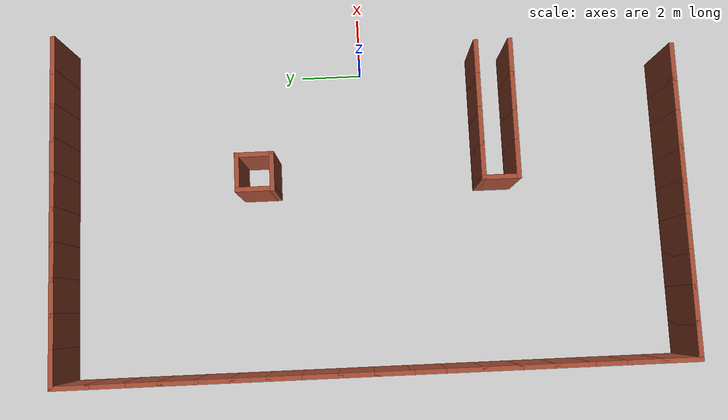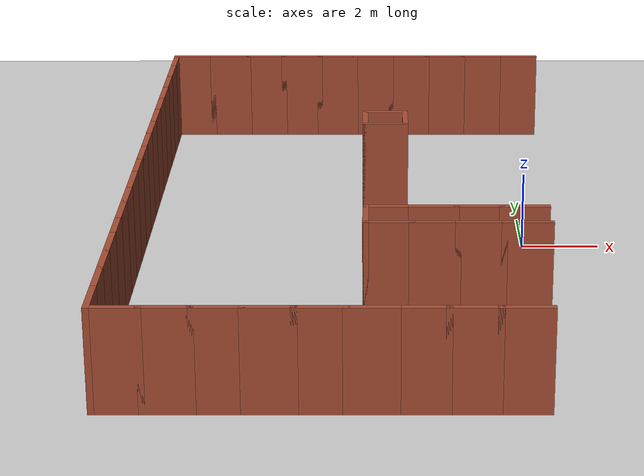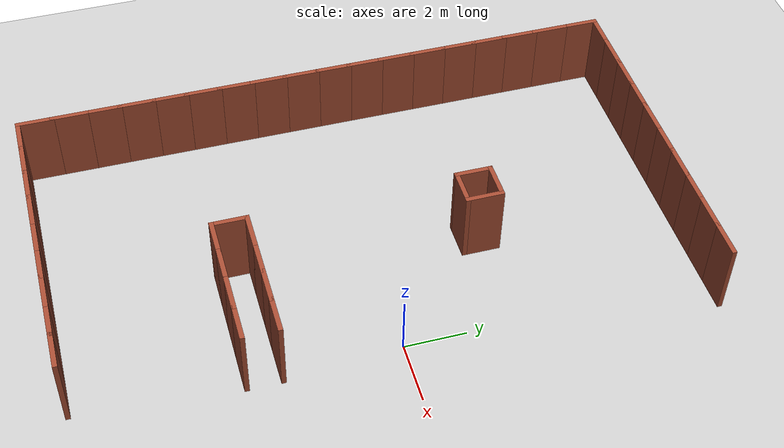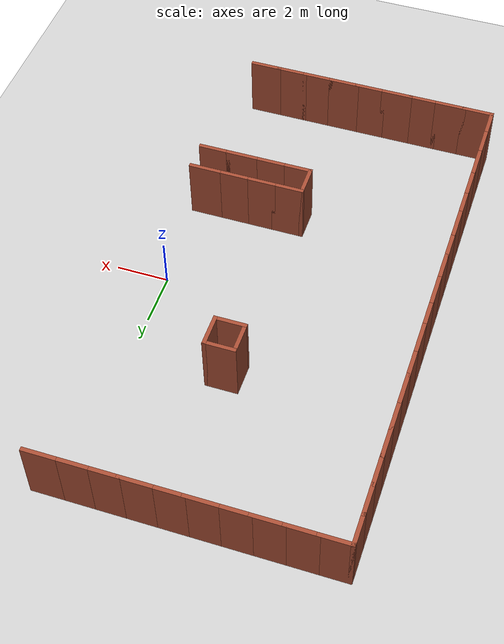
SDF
<sdf version="1.7">
 <world name="default">
  <model name="ground_plane">
   <static>1</static>
   <link name="link">
    <collision name="collision">
     <geometry><plane><normal>0 0 1</normal><size>100 100</size></plane></geometry>
     <surface>
      <contact><collide_bitmask>65535</collide_bitmask></contact>
      <friction><ode><mu>100</mu><mu2>50</mu2></ode></friction>
     </surface>
    </collision>
    <visual name="visual">
     <cast_shadows>0</cast_shadows>
     <geometry><plane><normal>0 0 1</normal><size>100 100</size></plane></geometry>
     <material>
      <script><uri>file://media/materials/scripts/gazebo.material</uri><name>Gazebo/Grey</name></script>
     </material>
    </visual>
   </link>
  </model>
  <model name="mapateste">
   <pose>0.45 -0.1 0 0 -0 0</pose>
   <link name="Wall_110">
    <collision name="Wall_110_Collision">
     <geometry><box><size>1.25 0.15 2.5</size></box></geometry>
     <pose>0 0 1.25 0 -0 0</pose>
    </collision>
    <visual name="Wall_110_Visual">
     <pose>0 0 1.25 0 -0 0</pose>
     <geometry><box><size>1.25 0.15 2.5</size></box></geometry>
     <material>
      <script><uri>file://media/materials/scripts/gazebo.material</uri><name>Gazebo/Bricks</name></script>
      <ambient>1 1 1 1</ambient>
     </material>
     <meta><layer>0</layer></meta>
    </visual>
    <pose>-0 9.9 0 0 -0 3.14159</pose>
   </link>
   <link name="Wall_111">
    <collision name="Wall_111_Collision">
     <geometry><box><size>1.25 0.15 2.5</size></box></geometry>
     <pose>0 0 1.25 0 -0 0</pose>
    </collision>
    <visual name="Wall_111_Visual">
     <pose>0 0 1.25 0 -0 0</pose>
     <geometry><box><size>1.25 0.15 2.5</size></box></geometry>
     <material>
      <script><uri>file://media/materials/scripts/gazebo.material</uri><name>Gazebo/Bricks</name></script>
      <ambient>1 1 1 1</ambient>
     </material>
     <meta><layer>0</layer></meta>
    </visual>
    <pose>-1.1 9.9 0 0 -0 3.14159</pose>
   </link>
   <link name="Wall_112">
    <collision name="Wall_112_Collision">
     <geometry><box><size>1.25 0.15 2.5</size></box></geometry>
     <pose>0 0 1.25 0 -0 0</pose>
    </collision>
    <visual name="Wall_112_Visual">
     <pose>0 0 1.25 0 -0 0</pose>
     <geometry><box><size>1.25 0.15 2.5</size></box></geometry>
     <material>
      <script><uri>file://media/materials/scripts/gazebo.material</uri><name>Gazebo/Bricks</name></script>
      <ambient>1 1 1 1</ambient>
     </material>
     <meta><layer>0</layer></meta>
    </visual>
    <pose>-2.2 9.9 0 0 -0 3.14159</pose>
   </link>
   <link name="Wall_113">
    <collision name="Wall_113_Collision">
     <geometry><box><size>1.25 0.15 2.5</size></box></geometry>
     <pose>0 0 1.25 0 -0 0</pose>
    </collision>
    <visual name="Wall_113_Visual">
     <pose>0 0 1.25 0 -0 0</pose>
     <geometry><box><size>1.25 0.15 2.5</size></box></geometry>
     <material>
      <script><uri>file://media/materials/scripts/gazebo.material</uri><name>Gazebo/Bricks</name></script>
      <ambient>1 1 1 1</ambient>
     </material>
     <meta><layer>0</layer></meta>
    </visual>
    <pose>-3.3 9.9 0 0 -0 3.14159</pose>
   </link>
   <link name="Wall_114">
    <collision name="Wall_114_Collision">
     <geometry><box><size>1.25 0.15 2.5</size></box></geometry>
     <pose>0 0 1.25 0 -0 0</pose>
    </collision>
    <visual name="Wall_114_Visual">
     <pose>0 0 1.25 0 -0 0</pose>
     <geometry><box><size>1.25 0.15 2.5</size></box></geometry>
     <material>
      <script><uri>file://media/materials/scripts/gazebo.material</uri><name>Gazebo/Bricks</name></script>
      <ambient>1 1 1 1</ambient>
     </material>
     <meta><layer>0</layer></meta>
    </visual>
    <pose>-4.4 9.9 0 0 -0 3.14159</pose>
   </link>
   <link name="Wall_115">
    <collision name="Wall_115_Collision">
     <geometry><box><size>1.25 0.15 2.5</size></box></geometry>
     <pose>0 0 1.25 0 -0 0</pose>
    </collision>
    <visual name="Wall_115_Visual">
     <pose>0 0 1.25 0 -0 0</pose>
     <geometry><box><size>1.25 0.15 2.5</size></box></geometry>
     <material>
      <script><uri>file://media/materials/scripts/gazebo.material</uri><name>Gazebo/Bricks</name></script>
      <ambient>1 1 1 1</ambient>
     </material>
     <meta><layer>0</layer></meta>
    </visual>
    <pose>-5.5 9.9 0 0 -0 3.14159</pose>
   </link>
   <link name="Wall_116">
    <collision name="Wall_116_Collision">
     <geometry><box><size>1.25 0.15 2.5</size></box></geometry>
     <pose>0 0 1.25 0 -0 0</pose>
    </collision>
    <visual name="Wall_116_Visual">
     <pose>0 0 1.25 0 -0 0</pose>
     <geometry><box><size>1.25 0.15 2.5</size></box></geometry>
     <material>
      <script><uri>file://media/materials/scripts/gazebo.material</uri><name>Gazebo/Bricks</name></script>
      <ambient>1 1 1 1</ambient>
     </material>
     <meta><layer>0</layer></meta>
    </visual>
    <pose>-6.6 9.9 0 0 -0 3.14159</pose>
   </link>
   <link name="Wall_117">
    <collision name="Wall_117_Collision">
     <geometry><box><size>1.25 0.15 2.5</size></box></geometry>
     <pose>0 0 1.25 0 -0 0</pose>
    </collision>
    <visual name="Wall_117_Visual">
     <pose>0 0 1.25 0 -0 0</pose>
     <geometry><box><size>1.25 0.15 2.5</size></box></geometry>
     <material>
      <script><uri>file://media/materials/scripts/gazebo.material</uri><name>Gazebo/Bricks</name></script>
      <ambient>1 1 1 1</ambient>
     </material>
     <meta><layer>0</layer></meta>
    </visual>
    <pose>-7.7 9.9 0 0 -0 3.14159</pose>
   </link>
   <link name="Wall_118">
    <collision name="Wall_118_Collision">
     <geometry><box><size>1.25 0.15 2.5</size></box></geometry>
     <pose>0 0 1.25 0 -0 0</pose>
    </collision>
    <visual name="Wall_118_Visual">
     <pose>0 0 1.25 0 -0 0</pose>
     <geometry><box><size>1.25 0.15 2.5</size></box></geometry>
     <material>
      <script><uri>file://media/materials/scripts/gazebo.material</uri><name>Gazebo/Bricks</name></script>
      <ambient>1 1 1 1</ambient>
     </material>
     <meta><layer>0</layer></meta>
    </visual>
    <pose>-8.8 9.9 0 0 -0 3.14159</pose>
   </link>
   <link name="Wall_119">
    <collision name="Wall_119_Collision">
     <geometry><box><size>1.25 0.15 2.5</size></box></geometry>
     <pose>0 0 1.25 0 -0 0</pose>
    </collision>
    <visual name="Wall_119_Visual">
     <pose>0 0 1.25 0 -0 0</pose>
     <geometry><box><size>1.25 0.15 2.5</size></box></geometry>
     <material>
      <script><uri>file://media/materials/scripts/gazebo.material</uri><name>Gazebo/Bricks</name></script>
      <ambient>1 1 1 1</ambient>
     </material>
     <meta><layer>0</layer></meta>
    </visual>
    <pose>-9.9 9.9 0 0 -0 3.14159</pose>
   </link>
   <link name="Wall_120">
    <collision name="Wall_120_Collision">
     <geometry><box><size>1.25 0.15 2.5</size></box></geometry>
     <pose>0 0 1.25 0 -0 0</pose>
    </collision>
    <visual name="Wall_120_Visual">
     <pose>0 0 1.25 0 -0 0</pose>
     <geometry><box><size>1.25 0.15 2.5</size></box></geometry>
     <material>
      <script><uri>file://media/materials/scripts/gazebo.material</uri><name>Gazebo/Bricks</name></script>
      <ambient>1 1 1 1</ambient>
     </material>
     <meta><layer>0</layer></meta>
    </visual>
    <pose>-10.45 9.35 0 0 -0 -1.5708</pose>
   </link>
   <link name="Wall_126">
    <collision name="Wall_126_Collision">
     <geometry><box><size>1.25 0.15 2.5</size></box></geometry>
     <pose>0 0 1.25 0 -0 0</pose>
    </collision>
    <visual name="Wall_126_Visual">
     <pose>0 0 1.25 0 -0 0</pose>
     <geometry><box><size>1.25 0.15 2.5</size></box></geometry>
     <material>
      <script><uri>file://media/materials/scripts/gazebo.material</uri><name>Gazebo/Bricks</name></script>
      <ambient>1 1 1 1</ambient>
     </material>
     <meta><layer>0</layer></meta>
    </visual>
    <pose>-10.45 3.85 0 0 -0 -1.5708</pose>
   </link>
   <link name="Wall_127">
    <collision name="Wall_127_Collision">
     <geometry><box><size>1.25 0.15 2.5</size></box></geometry>
     <pose>0 0 1.25 0 -0 0</pose>
    </collision>
    <visual name="Wall_127_Visual">
     <pose>0 0 1.25 0 -0 0</pose>
     <geometry><box><size>1.25 0.15 2.5</size></box></geometry>
     <material>
      <script><uri>file://media/materials/scripts/gazebo.material</uri><name>Gazebo/Bricks</name></script>
      <ambient>1 1 1 1</ambient>
     </material>
     <meta><layer>0</layer></meta>
    </visual>
    <pose>-10.45 2.75 0 0 -0 -1.5708</pose>
   </link>
   <link name="Wall_128">
    <collision name="Wall_128_Collision">
     <geometry><box><size>1.25 0.15 2.5</size></box></geometry>
     <pose>0 0 1.25 0 -0 0</pose>
    </collision>
    <visual name="Wall_128_Visual">
     <pose>0 0 1.25 0 -0 0</pose>
     <geometry><box><size>1.25 0.15 2.5</size></box></geometry>
     <material>
      <script><uri>file://media/materials/scripts/gazebo.material</uri><name>Gazebo/Bricks</name></script>
      <ambient>1 1 1 1</ambient>
     </material>
     <meta><layer>0</layer></meta>
    </visual>
    <pose>-10.45 1.65 0 0 -0 -1.5708</pose>
   </link>
   <link name="Wall_129">
    <collision name="Wall_129_Collision">
     <geometry><box><size>1.25 0.15 2.5</size></box></geometry>
     <pose>0 0 1.25 0 -0 0</pose>
    </collision>
    <visual name="Wall_129_Visual">
     <pose>0 0 1.25 0 -0 0</pose>
     <geometry><box><size>1.25 0.15 2.5</size></box></geometry>
     <material>
      <script><uri>file://media/materials/scripts/gazebo.material</uri><name>Gazebo/Bricks</name></script>
      <ambient>1 1 1 1</ambient>
     </material>
     <meta><layer>0</layer></meta>
    </visual>
    <pose>-10.45 0.55 0 0 -0 -1.5708</pose>
   </link>
   <link name="Wall_130">
    <collision name="Wall_130_Collision">
     <geometry><box><size>1.25 0.15 2.5</size></box></geometry>
     <pose>0 0 1.25 0 -0 0</pose>
    </collision>
    <visual name="Wall_130_Visual">
     <pose>0 0 1.25 0 -0 0</pose>
     <geometry><box><size>1.25 0.15 2.5</size></box></geometry>
     <material>
      <script><uri>file://media/materials/scripts/gazebo.material</uri><name>Gazebo/Bricks</name></script>
      <ambient>1 1 1 1</ambient>
     </material>
     <meta><layer>0</layer></meta>
    </visual>
    <pose>-10.45 -0.55 0 0 -0 -1.5708</pose>
   </link>
   <link name="Wall_131">
    <collision name="Wall_131_Collision">
     <geometry><box><size>1.25 0.15 2.5</size></box></geometry>
     <pose>0 0 1.25 0 -0 0</pose>
    </collision>
    <visual name="Wall_131_Visual">
     <pose>0 0 1.25 0 -0 0</pose>
     <geometry><box><size>1.25 0.15 2.5</size></box></geometry>
     <material>
      <script><uri>file://media/materials/scripts/gazebo.material</uri><name>Gazebo/Bricks</name></script>
      <ambient>1 1 1 1</ambient>
     </material>
     <meta><layer>0</layer></meta>
    </visual>
    <pose>-10.45 -1.65 0 0 -0 -1.5708</pose>
   </link>
   <link name="Wall_132">
    <collision name="Wall_132_Collision">
     <geometry><box><size>1.25 0.15 2.5</size></box></geometry>
     <pose>0 0 1.25 0 -0 0</pose>
    </collision>
    <visual name="Wall_132_Visual">
     <pose>0 0 1.25 0 -0 0</pose>
     <geometry><box><size>1.25 0.15 2.5</size></box></geometry>
     <material>
      <script><uri>file://media/materials/scripts/gazebo.material</uri><name>Gazebo/Bricks</name></script>
      <ambient>1 1 1 1</ambient>
     </material>
     <meta><layer>0</layer></meta>
    </visual>
    <pose>-10.45 -2.75 0 0 -0 -1.5708</pose>
   </link>
   <link name="Wall_133">
    <collision name="Wall_133_Collision">
     <geometry><box><size>1.25 0.15 2.5</size></box></geometry>
     <pose>0 0 1.25 0 -0 0</pose>
    </collision>
    <visual name="Wall_133_Visual">
     <pose>0 0 1.25 0 -0 0</pose>
     <geometry><box><size>1.25 0.15 2.5</size></box></geometry>
     <material>
      <script><uri>file://media/materials/scripts/gazebo.material</uri><name>Gazebo/Bricks</name></script>
      <ambient>1 1 1 1</ambient>
     </material>
     <meta><layer>0</layer></meta>
    </visual>
    <pose>-10.45 -3.85 0 0 -0 -1.5708</pose>
   </link>
   <link name="Wall_134">
    <collision name="Wall_134_Collision">
     <geometry><box><size>1.25 0.15 2.5</size></box></geometry>
     <pose>0 0 1.25 0 -0 0</pose>
    </collision>
    <visual name="Wall_134_Visual">
     <pose>0 0 1.25 0 -0 0</pose>
     <geometry><box><size>1.25 0.15 2.5</size></box></geometry>
     <material>
      <script><uri>file://media/materials/scripts/gazebo.material</uri><name>Gazebo/Bricks</name></script>
      <ambient>1 1 1 1</ambient>
     </material>
     <meta><layer>0</layer></meta>
    </visual>
    <pose>-10.45 -4.95 0 0 -0 -1.5708</pose>
   </link>
   <link name="Wall_135">
    <collision name="Wall_135_Collision">
     <geometry><box><size>1.25 0.15 2.5</size></box></geometry>
     <pose>0 0 1.25 0 -0 0</pose>
    </collision>
    <visual name="Wall_135_Visual">
     <pose>0 0 1.25 0 -0 0</pose>
     <geometry><box><size>1.25 0.15 2.5</size></box></geometry>
     <material>
      <script><uri>file://media/materials/scripts/gazebo.material</uri><name>Gazebo/Bricks</name></script>
      <ambient>1 1 1 1</ambient>
     </material>
     <meta><layer>0</layer></meta>
    </visual>
    <pose>-10.45 -6.05 0 0 -0 -1.5708</pose>
   </link>
   <link name="Wall_136">
    <collision name="Wall_136_Collision">
     <geometry><box><size>1.25 0.15 2.5</size></box></geometry>
     <pose>0 0 1.25 0 -0 0</pose>
    </collision>
    <visual name="Wall_136_Visual">
     <pose>0 0 1.25 0 -0 0</pose>
     <geometry><box><size>1.25 0.15 2.5</size></box></geometry>
     <material>
      <script><uri>file://media/materials/scripts/gazebo.material</uri><name>Gazebo/Bricks</name></script>
      <ambient>1 1 1 1</ambient>
     </material>
     <meta><layer>0</layer></meta>
    </visual>
    <pose>-10.45 -7.15 0 0 -0 -1.5708</pose>
   </link>
   <link name="Wall_137">
    <collision name="Wall_137_Collision">
     <geometry><box><size>1.25 0.15 2.5</size></box></geometry>
     <pose>0 0 1.25 0 -0 0</pose>
    </collision>
    <visual name="Wall_137_Visual">
     <pose>0 0 1.25 0 -0 0</pose>
     <geometry><box><size>1.25 0.15 2.5</size></box></geometry>
     <material>
      <script><uri>file://media/materials/scripts/gazebo.material</uri><name>Gazebo/Bricks</name></script>
      <ambient>1 1 1 1</ambient>
     </material>
     <meta><layer>0</layer></meta>
    </visual>
    <pose>-10.45 -8.25 0 0 -0 -1.5708</pose>
   </link>
   <link name="Wall_138">
    <collision name="Wall_138_Collision">
     <geometry><box><size>1.25 0.15 2.5</size></box></geometry>
     <pose>0 0 1.25 0 -0 0</pose>
    </collision>
    <visual name="Wall_138_Visual">
     <pose>0 0 1.25 0 -0 0</pose>
     <geometry><box><size>1.25 0.15 2.5</size></box></geometry>
     <material>
      <script><uri>file://media/materials/scripts/gazebo.material</uri><name>Gazebo/Bricks</name></script>
      <ambient>1 1 1 1</ambient>
     </material>
     <meta><layer>0</layer></meta>
    </visual>
    <pose>-10.45 -9.35 0 0 -0 -1.5708</pose>
   </link>
   <link name="Wall_142">
    <collision name="Wall_142_Collision">
     <geometry><box><size>1.25 0.15 2.5</size></box></geometry>
     <pose>0 0 1.25 0 -0 0</pose>
    </collision>
    <visual name="Wall_142_Visual">
     <pose>0 0 1.25 0 -0 0</pose>
     <geometry><box><size>1.25 0.15 2.5</size></box></geometry>
     <material>
      <script><uri>file://media/materials/scripts/gazebo.material</uri><name>Gazebo/Bricks</name></script>
      <ambient>1 1 1 1</ambient>
     </material>
     <meta><layer>0</layer></meta>
    </visual>
    <pose>-4.60633 3.55566 0 0 -0 1.5708</pose>
   </link>
   <link name="Wall_144">
    <collision name="Wall_144_Collision">
     <geometry><box><size>1.25 0.15 2.5</size></box></geometry>
     <pose>0 0 1.25 0 -0 0</pose>
    </collision>
    <visual name="Wall_144_Visual">
     <pose>0 0 1.25 0 -0 0</pose>
     <geometry><box><size>1.25 0.15 2.5</size></box></geometry>
     <material>
      <script><uri>file://media/materials/scripts/gazebo.material</uri><name>Gazebo/Bricks</name></script>
      <ambient>1 1 1 1</ambient>
     </material>
     <meta><layer>0</layer></meta>
    </visual>
    <pose>-10.45 8.25 0 0 -0 -1.5708</pose>
   </link>
   <link name="Wall_145">
    <collision name="Wall_145_Collision">
     <geometry><box><size>1.25 0.15 2.5</size></box></geometry>
     <pose>0 0 1.25 0 -0 0</pose>
    </collision>
    <visual name="Wall_145_Visual">
     <pose>0 0 1.25 0 -0 0</pose>
     <geometry><box><size>1.25 0.15 2.5</size></box></geometry>
     <material>
      <script><uri>file://media/materials/scripts/gazebo.material</uri><name>Gazebo/Bricks</name></script>
      <ambient>1 1 1 1</ambient>
     </material>
     <meta><layer>0</layer></meta>
    </visual>
    <pose>-10.45 7.15 0 0 -0 -1.5708</pose>
   </link>
   <link name="Wall_146">
    <collision name="Wall_146_Collision">
     <geometry><box><size>1.25 0.15 2.5</size></box></geometry>
     <pose>0 0 1.25 0 -0 0</pose>
    </collision>
    <visual name="Wall_146_Visual">
     <pose>0 0 1.25 0 -0 0</pose>
     <geometry><box><size>1.25 0.15 2.5</size></box></geometry>
     <material>
      <script><uri>file://media/materials/scripts/gazebo.material</uri><name>Gazebo/Bricks</name></script>
      <ambient>1 1 1 1</ambient>
     </material>
     <meta><layer>0</layer></meta>
    </visual>
    <pose>-10.45 6.05 0 0 -0 -1.5708</pose>
   </link>
   <link name="Wall_147">
    <collision name="Wall_147_Collision">
     <geometry><box><size>1.25 0.15 2.5</size></box></geometry>
     <pose>0 0 1.25 0 -0 0</pose>
    </collision>
    <visual name="Wall_147_Visual">
     <pose>0 0 1.25 0 -0 0</pose>
     <geometry><box><size>1.25 0.15 2.5</size></box></geometry>
     <material>
      <script><uri>file://media/materials/scripts/gazebo.material</uri><name>Gazebo/Bricks</name></script>
      <ambient>1 1 1 1</ambient>
     </material>
     <meta><layer>0</layer></meta>
    </visual>
    <pose>-10.45 4.95 0 0 -0 -1.5708</pose>
   </link>
   <link name="Wall_155">
    <collision name="Wall_155_Collision">
     <geometry><box><size>1.25 0.15 2.5</size></box></geometry>
     <pose>0 0 1.25 0 -0 0</pose>
    </collision>
    <visual name="Wall_155_Visual">
     <pose>0 0 1.25 0 -0 0</pose>
     <geometry><box><size>1.25 0.15 2.5</size></box></geometry>
     <material>
      <script><uri>file://media/materials/scripts/gazebo.material</uri><name>Gazebo/Bricks</name></script>
      <ambient>1 1 1 1</ambient>
     </material>
     <meta><layer>0</layer></meta>
    </visual>
    <pose>-4.05633 4.10566 0 0 -0 0</pose>
   </link>
   <link name="Wall_156">
    <collision name="Wall_156_Collision">
     <geometry><box><size>1.25 0.15 2.5</size></box></geometry>
     <pose>0 0 1.25 0 -0 0</pose>
    </collision>
    <visual name="Wall_156_Visual">
     <pose>0 0 1.25 0 -0 0</pose>
     <geometry><box><size>1.25 0.15 2.5</size></box></geometry>
     <material>
      <script><uri>file://media/materials/scripts/gazebo.material</uri><name>Gazebo/Bricks</name></script>
      <ambient>1 1 1 1</ambient>
     </material>
     <meta><layer>0</layer></meta>
    </visual>
    <pose>-3.50633 3.55566 0 0 -0 -1.5708</pose>
   </link>
   <link name="Wall_157">
    <collision name="Wall_157_Collision">
     <geometry><box><size>1.25 0.15 2.5</size></box></geometry>
     <pose>0 0 1.25 0 -0 0</pose>
    </collision>
    <visual name="Wall_157_Visual">
     <pose>0 0 1.25 0 -0 0</pose>
     <geometry><box><size>1.25 0.15 2.5</size></box></geometry>
     <material>
      <script><uri>file://media/materials/scripts/gazebo.material</uri><name>Gazebo/Bricks</name></script>
      <ambient>1 1 1 1</ambient>
     </material>
     <meta><layer>0</layer></meta>
    </visual>
    <pose>-4.05633 3.00566 0 0 -0 3.14159</pose>
   </link>
   <link name="Wall_169">
    <collision name="Wall_169_Collision">
     <geometry><box><size>1.25 0.15 2.5</size></box></geometry>
     <pose>0 0 1.25 0 -0 0</pose>
    </collision>
    <visual name="Wall_169_Visual">
     <pose>0 0 1.25 0 -0 0</pose>
     <geometry><box><size>1.25 0.15 2.5</size></box></geometry>
     <material>
      <script><uri>file://media/materials/scripts/gazebo.material</uri><name>Gazebo/Bricks</name></script>
      <ambient>1 1 1 1</ambient>
     </material>
     <meta><layer>0</layer></meta>
    </visual>
    <pose>-4.55922 -4.19159 0 0 -0 -1.5708</pose>
   </link>
   <link name="Wall_174">
    <collision name="Wall_174_Collision">
     <geometry><box><size>1.25 0.15 2.5</size></box></geometry>
     <pose>0 0 1.25 0 -0 0</pose>
    </collision>
    <visual name="Wall_174_Visual">
     <pose>0 0 1.25 0 -0 0</pose>
     <geometry><box><size>1.25 0.15 2.5</size></box></geometry>
     <material>
      <script><uri>file://media/materials/scripts/gazebo.material</uri><name>Gazebo/Bricks</name></script>
      <ambient>1 1 1 1</ambient>
     </material>
     <meta><layer>0</layer></meta>
    </visual>
    <pose>-4.00922 -4.74159 0 0 -0 0</pose>
   </link>
   <link name="Wall_175">
    <collision name="Wall_175_Collision">
     <geometry><box><size>1.25 0.15 2.5</size></box></geometry>
     <pose>0 0 1.25 0 -0 0</pose>
    </collision>
    <visual name="Wall_175_Visual">
     <pose>0 0 1.25 0 -0 0</pose>
     <geometry><box><size>1.25 0.15 2.5</size></box></geometry>
     <material>
      <script><uri>file://media/materials/scripts/gazebo.material</uri><name>Gazebo/Bricks</name></script>
      <ambient>1 1 1 1</ambient>
     </material>
     <meta><layer>0</layer></meta>
    </visual>
    <pose>-2.90922 -4.74159 0 0 -0 0</pose>
   </link>
   <link name="Wall_176">
    <collision name="Wall_176_Collision">
     <geometry><box><size>1.25 0.15 2.5</size></box></geometry>
     <pose>0 0 1.25 0 -0 0</pose>
    </collision>
    <visual name="Wall_176_Visual">
     <pose>0 0 1.25 0 -0 0</pose>
     <geometry><box><size>1.25 0.15 2.5</size></box></geometry>
     <material>
      <script><uri>file://media/materials/scripts/gazebo.material</uri><name>Gazebo/Bricks</name></script>
      <ambient>1 1 1 1</ambient>
     </material>
     <meta><layer>0</layer></meta>
    </visual>
    <pose>-1.80922 -4.74159 0 0 -0 0</pose>
   </link>
   <link name="Wall_177">
    <collision name="Wall_177_Collision">
     <geometry><box><size>1.25 0.15 2.5</size></box></geometry>
     <pose>0 0 1.25 0 -0 0</pose>
    </collision>
    <visual name="Wall_177_Visual">
     <pose>0 0 1.25 0 -0 0</pose>
     <geometry><box><size>1.25 0.15 2.5</size></box></geometry>
     <material>
      <script><uri>file://media/materials/scripts/gazebo.material</uri><name>Gazebo/Bricks</name></script>
      <ambient>1 1 1 1</ambient>
     </material>
     <meta><layer>0</layer></meta>
    </visual>
    <pose>-0.709218 -4.74159 0 0 -0 0</pose>
   </link>
   <link name="Wall_188">
    <collision name="Wall_188_Collision">
     <geometry><box><size>1.25 0.15 2.5</size></box></geometry>
     <pose>0 0 1.25 0 -0 0</pose>
    </collision>
    <visual name="Wall_188_Visual">
     <pose>0 0 1.25 0 -0 0</pose>
     <geometry><box><size>1.25 0.15 2.5</size></box></geometry>
     <material>
      <script><uri>file://media/materials/scripts/gazebo.material</uri><name>Gazebo/Bricks</name></script>
      <ambient>1 1 1 1</ambient>
     </material>
     <meta><layer>0</layer></meta>
    </visual>
    <pose>-4.00922 -3.64159 0 0 -0 0</pose>
   </link>
   <link name="Wall_189">
    <collision name="Wall_189_Collision">
     <geometry><box><size>1.25 0.15 2.5</size></box></geometry>
     <pose>0 0 1.25 0 -0 0</pose>
    </collision>
    <visual name="Wall_189_Visual">
     <pose>0 0 1.25 0 -0 0</pose>
     <geometry><box><size>1.25 0.15 2.5</size></box></geometry>
     <material>
      <script><uri>file://media/materials/scripts/gazebo.material</uri><name>Gazebo/Bricks</name></script>
      <ambient>1 1 1 1</ambient>
     </material>
     <meta><layer>0</layer></meta>
    </visual>
    <pose>-2.90922 -3.64159 0 0 -0 0</pose>
   </link>
   <link name="Wall_190">
    <collision name="Wall_190_Collision">
     <geometry><box><size>1.25 0.15 2.5</size></box></geometry>
     <pose>0 0 1.25 0 -0 0</pose>
    </collision>
    <visual name="Wall_190_Visual">
     <pose>0 0 1.25 0 -0 0</pose>
     <geometry><box><size>1.25 0.15 2.5</size></box></geometry>
     <material>
      <script><uri>file://media/materials/scripts/gazebo.material</uri><name>Gazebo/Bricks</name></script>
      <ambient>1 1 1 1</ambient>
     </material>
     <meta><layer>0</layer></meta>
    </visual>
    <pose>-1.80922 -3.64159 0 0 -0 0</pose>
   </link>
   <link name="Wall_191">
    <collision name="Wall_191_Collision">
     <geometry><box><size>1.25 0.15 2.5</size></box></geometry>
     <pose>0 0 1.25 0 -0 0</pose>
    </collision>
    <visual name="Wall_191_Visual">
     <pose>0 0 1.25 0 -0 0</pose>
     <geometry><box><size>1.25 0.15 2.5</size></box></geometry>
     <material>
      <script><uri>file://media/materials/scripts/gazebo.material</uri><name>Gazebo/Bricks</name></script>
      <ambient>1 1 1 1</ambient>
     </material>
     <meta><layer>0</layer></meta>
    </visual>
    <pose>-0.709218 -3.64159 0 0 -0 0</pose>
   </link>
   <link name="Wall_197">
    <collision name="Wall_197_Collision">
     <geometry><box><size>1.25 0.15 2.5</size></box></geometry>
     <pose>0 0 1.25 0 -0 0</pose>
    </collision>
    <visual name="Wall_197_Visual">
     <pose>0 0 1.25 0 -0 0</pose>
     <geometry><box><size>1.25 0.15 2.5</size></box></geometry>
     <material>
      <script><uri>file://media/materials/scripts/gazebo.material</uri><name>Gazebo/Bricks</name></script>
      <ambient>1 1 1 1</ambient>
     </material>
     <meta><layer>0</layer></meta>
    </visual>
    <pose>-9.9 -9.9 0 0 -0 3.14159</pose>
   </link>
   <link name="Wall_64">
    <collision name="Wall_64_Collision">
     <geometry><box><size>1.25 0.15 2.5</size></box></geometry>
     <pose>0 0 1.25 0 -0 0</pose>
    </collision>
    <visual name="Wall_64_Visual">
     <pose>0 0 1.25 0 -0 0</pose>
     <geometry><box><size>1.25 0.15 2.5</size></box></geometry>
     <material>
      <script><uri>file://media/materials/scripts/gazebo.material</uri><name>Gazebo/Bricks</name></script>
      <ambient>1 1 1 1</ambient>
     </material>
     <meta><layer>0</layer></meta>
    </visual>
    <pose>-8.8 -9.9 0 0 -0 0</pose>
   </link>
   <link name="Wall_65">
    <collision name="Wall_65_Collision">
     <geometry><box><size>1.25 0.15 2.5</size></box></geometry>
     <pose>0 0 1.25 0 -0 0</pose>
    </collision>
    <visual name="Wall_65_Visual">
     <pose>0 0 1.25 0 -0 0</pose>
     <geometry><box><size>1.25 0.15 2.5</size></box></geometry>
     <material>
      <script><uri>file://media/materials/scripts/gazebo.material</uri><name>Gazebo/Bricks</name></script>
      <ambient>1 1 1 1</ambient>
     </material>
     <meta><layer>0</layer></meta>
    </visual>
    <pose>-7.7 -9.9 0 0 -0 0</pose>
   </link>
   <link name="Wall_66">
    <collision name="Wall_66_Collision">
     <geometry><box><size>1.25 0.15 2.5</size></box></geometry>
     <pose>0 0 1.25 0 -0 0</pose>
    </collision>
    <visual name="Wall_66_Visual">
     <pose>0 0 1.25 0 -0 0</pose>
     <geometry><box><size>1.25 0.15 2.5</size></box></geometry>
     <material>
      <script><uri>file://media/materials/scripts/gazebo.material</uri><name>Gazebo/Bricks</name></script>
      <ambient>1 1 1 1</ambient>
     </material>
     <meta><layer>0</layer></meta>
    </visual>
    <pose>-6.6 -9.9 0 0 -0 0</pose>
   </link>
   <link name="Wall_67">
    <collision name="Wall_67_Collision">
     <geometry><box><size>1.25 0.15 2.5</size></box></geometry>
     <pose>0 0 1.25 0 -0 0</pose>
    </collision>
    <visual name="Wall_67_Visual">
     <pose>0 0 1.25 0 -0 0</pose>
     <geometry><box><size>1.25 0.15 2.5</size></box></geometry>
     <material>
      <script><uri>file://media/materials/scripts/gazebo.material</uri><name>Gazebo/Bricks</name></script>
      <ambient>1 1 1 1</ambient>
     </material>
     <meta><layer>0</layer></meta>
    </visual>
    <pose>-5.5 -9.9 0 0 -0 0</pose>
   </link>
   <link name="Wall_68">
    <collision name="Wall_68_Collision">
     <geometry><box><size>1.25 0.15 2.5</size></box></geometry>
     <pose>0 0 1.25 0 -0 0</pose>
    </collision>
    <visual name="Wall_68_Visual">
     <pose>0 0 1.25 0 -0 0</pose>
     <geometry><box><size>1.25 0.15 2.5</size></box></geometry>
     <material>
      <script><uri>file://media/materials/scripts/gazebo.material</uri><name>Gazebo/Bricks</name></script>
      <ambient>1 1 1 1</ambient>
     </material>
     <meta><layer>0</layer></meta>
    </visual>
    <pose>-4.4 -9.9 0 0 -0 0</pose>
   </link>
   <link name="Wall_69">
    <collision name="Wall_69_Collision">
     <geometry><box><size>1.25 0.15 2.5</size></box></geometry>
     <pose>0 0 1.25 0 -0 0</pose>
    </collision>
    <visual name="Wall_69_Visual">
     <pose>0 0 1.25 0 -0 0</pose>
     <geometry><box><size>1.25 0.15 2.5</size></box></geometry>
     <material>
      <script><uri>file://media/materials/scripts/gazebo.material</uri><name>Gazebo/Bricks</name></script>
      <ambient>1 1 1 1</ambient>
     </material>
     <meta><layer>0</layer></meta>
    </visual>
    <pose>-3.3 -9.9 0 0 -0 0</pose>
   </link>
   <link name="Wall_70">
    <collision name="Wall_70_Collision">
     <geometry><box><size>1.25 0.15 2.5</size></box></geometry>
     <pose>0 0 1.25 0 -0 0</pose>
    </collision>
    <visual name="Wall_70_Visual">
     <pose>0 0 1.25 0 -0 0</pose>
     <geometry><box><size>1.25 0.15 2.5</size></box></geometry>
     <material>
      <script><uri>file://media/materials/scripts/gazebo.material</uri><name>Gazebo/Bricks</name></script>
      <ambient>1 1 1 1</ambient>
     </material>
     <meta><layer>0</layer></meta>
    </visual>
    <pose>-2.2 -9.9 0 0 -0 0</pose>
   </link>
   <link name="Wall_71">
    <collision name="Wall_71_Collision">
     <geometry><box><size>1.25 0.15 2.5</size></box></geometry>
     <pose>0 0 1.25 0 -0 0</pose>
    </collision>
    <visual name="Wall_71_Visual">
     <pose>0 0 1.25 0 -0 0</pose>
     <geometry><box><size>1.25 0.15 2.5</size></box></geometry>
     <material>
      <script><uri>file://media/materials/scripts/gazebo.material</uri><name>Gazebo/Bricks</name></script>
      <ambient>1 1 1 1</ambient>
     </material>
     <meta><layer>0</layer></meta>
    </visual>
    <pose>-1.1 -9.9 0 0 -0 0</pose>
   </link>
   <static>1</static>
  </model>
 </world>
</sdf>
